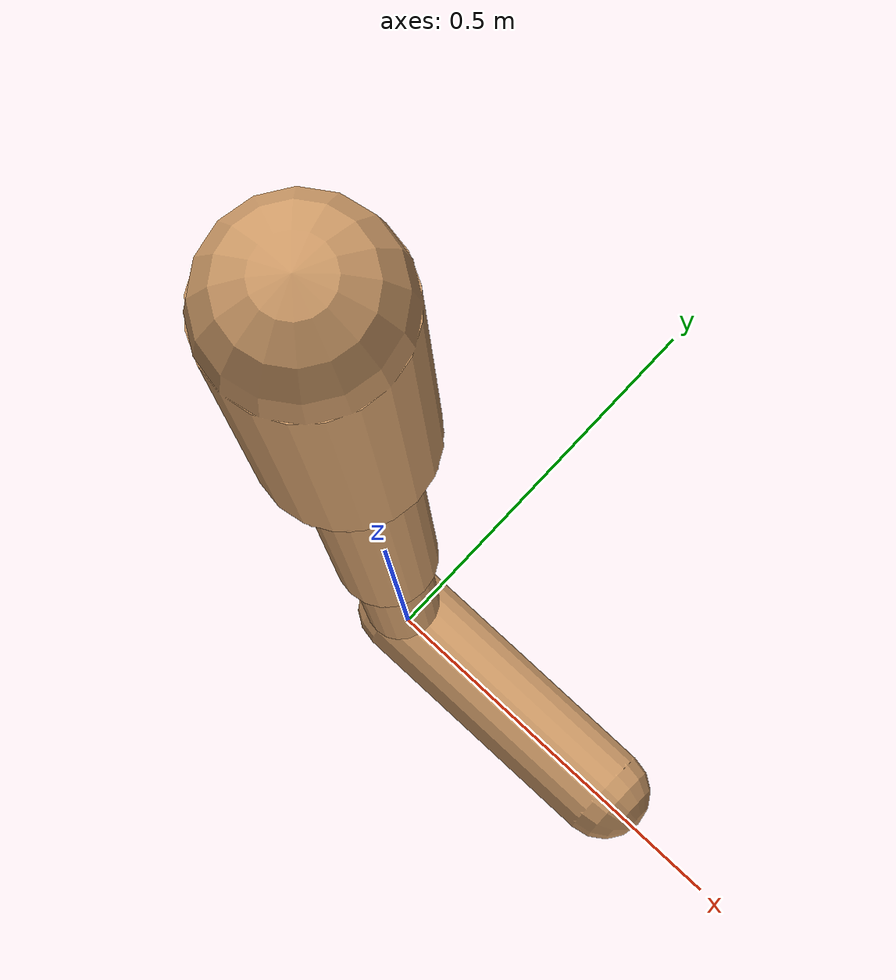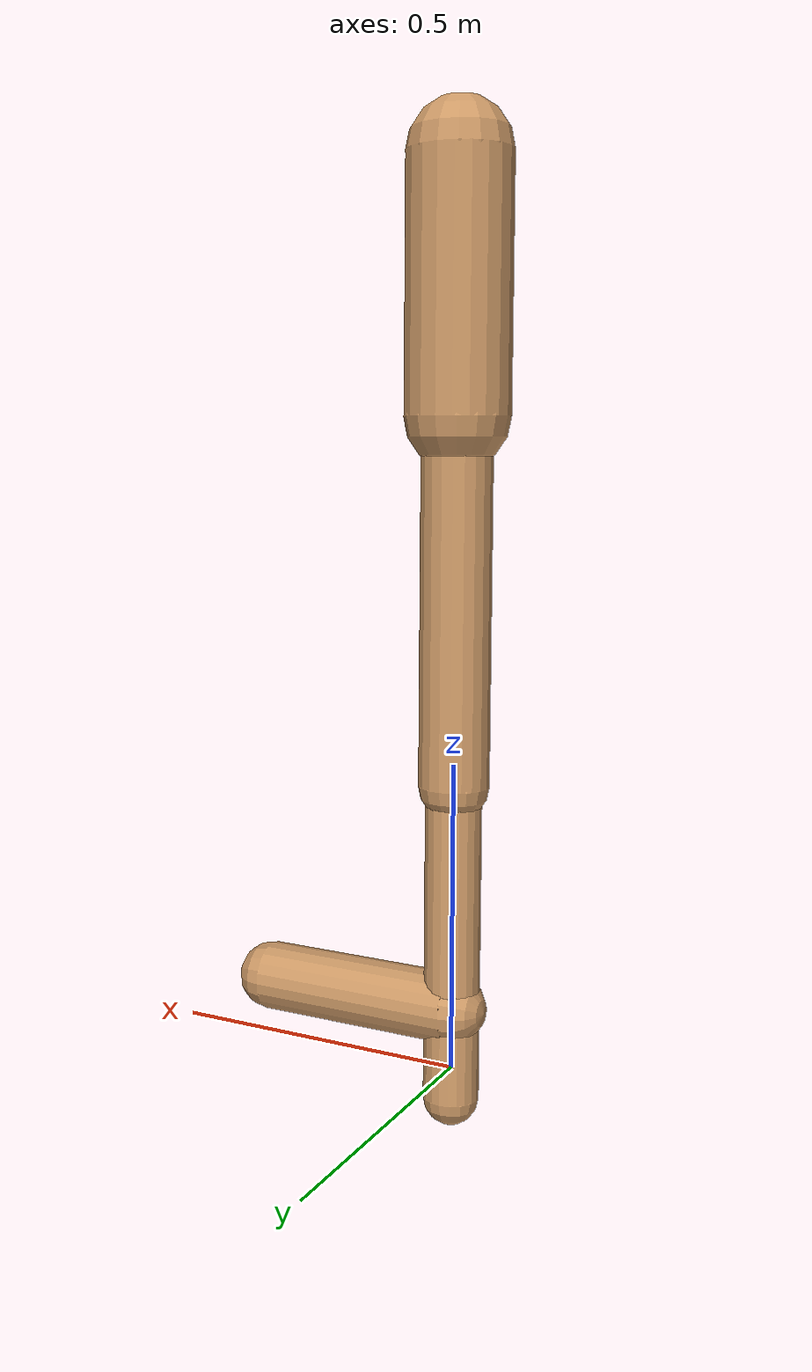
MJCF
<mujoco model="walker2d">
  <compiler angle="degree" coordinate="global" inertiafromgeom="true" />
  <default>
    <joint armature="0.01" damping=".1" limited="true" />
    <geom conaffinity="0" condim="3" contype="1" density="1000" friction="0.8 .1 .1" rgba="0.8 0.6 .4 1" />
  </default>
  <option integrator="RK4" timestep="0.002" />
  <worldbody>

    <body name="torso" pos="0 0 0.2814977068667852">
      <joint armature="0" axis="1 0 0" damping="0" limited="false" name="ignorex" pos="0 0 0" stiffness="0" type="slide" />
      <joint armature="0" axis="0 0 1" damping="0" limited="false" name="ignorez" pos="0 0 0" ref="1.25" stiffness="0" type="slide" />
      <joint armature="0" axis="0 1 0" damping="0" limited="false" name="ignorey" pos="0 0 0" stiffness="0" type="hinge" />
      <geom fromto="0 0 1.45 0 0 1.05" name="torso_geom" size="0.0836394202420566" type="capsule" />
      <body name="thigh">
        <joint axis="0 -1 0" name="thigh_joint" pos="0 0 1.05" range="-150 0" type="hinge" />
        <geom fromto="0.0 0.0 1.05 0.0 0.0 0.46665898095783853" name="thigh_geom" size="0.05663362405484752" type="capsule" />
        <body name="leg" pos="0.0 0.0 -0.13334101904216145">
          <joint axis="0 -1 0" name="leg_joint" pos="0 0 0.6" range="-150 0" type="hinge" />
          <geom fromto="0.0 0.0 0.6 0.0 0.0 -0.04815668782462379" name="leg_geom" size="0.04530689924387802" type="capsule" />
          <body name="foot" pos="0.0 0.0 -0.1481566878246238">
            <joint axis="0 -1 0" name="foot_joint" pos="0 0 0.1" range="-45 45" type="hinge" />
            <geom fromto="-0.0 0.0 0.1 0.3334471675730684 0.0 0.1" name="foot_geom" size="0.05660247143207234" type="capsule" />
          </body>
        </body>
      </body>

      <body name="thigh_left">
        <joint axis="0 -1 0" name="thigh_left_joint" pos="0 0 1.05" range="-150 0" type="hinge" />
        <geom fromto="0.0 0.0 1.05 0.0 0.0 0.46665898095783853" name="thigh_left_geom" rgba=".7 .3 .6 1" size="0.05663362405484752" type="capsule" />
        <body name="leg_left" pos="0.0 0.0 -0.13334101904216145">
          <joint axis="0 -1 0" name="leg_left_joint" pos="0 0 0.6" range="-150 0" type="hinge" />
          <geom fromto="0.0 0.0 0.6 0.0 0.0 -0.04815668782462379" name="leg_left_geom" rgba=".7 .3 .6 1" size="0.04530689924387802" type="capsule" />
          <body name="foot_left" pos="0.0 0.0 -0.1481566878246238">
            <joint axis="0 -1 0" name="foot_left_joint" pos="0 0 0.1" range="-45 45" type="hinge" />
            <geom fromto="-0.0 0.0 0.1 0.3334471675730684 0.0 0.1" name="foot_left_geom" rgba=".7 .3 .6 1" size="0.05660247143207234" type="capsule" />
          </body>
        </body>
      </body>
    </body>
  </worldbody>
  <actuator>

    <motor ctrllimited="true" ctrlrange="-1.0 1.0" gear="100" joint="thigh_joint" />
    <motor ctrllimited="true" ctrlrange="-1.0 1.0" gear="100" joint="leg_joint" />
    <motor ctrllimited="true" ctrlrange="-1.0 1.0" gear="100" joint="foot_joint" />
    <motor ctrllimited="true" ctrlrange="-1.0 1.0" gear="100" joint="thigh_left_joint" />
    <motor ctrllimited="true" ctrlrange="-1.0 1.0" gear="100" joint="leg_left_joint" />
    <motor ctrllimited="true" ctrlrange="-1.0 1.0" gear="100" joint="foot_left_joint" />

  </actuator>
</mujoco>
